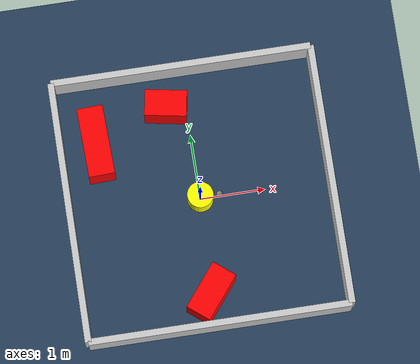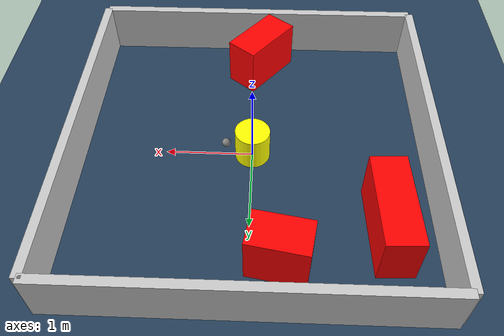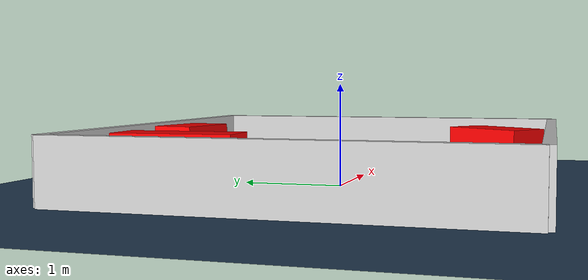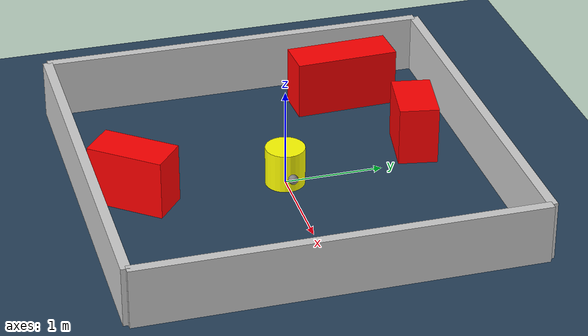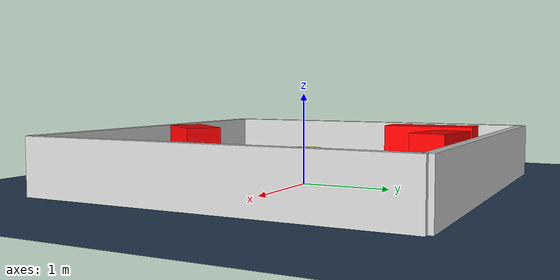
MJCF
<?xml version="1.0" ?>
<mujoco model="generated_environment">
  <option timestep="0.01" integrator="RK4" cone="elliptic"/>
  <default>
    <geom density="1"/>
  </default>
  <asset>
    <texture builtin="gradient" height="3072" rgb1="0.3 0.5 0.7" rgb2="0 0 0" type="skybox" width="512"/>
    <texture builtin="checker" height="300" mark="edge" markrgb="0.8 0.8 0.8" name="groundplane" rgb1="0.2 0.3 0.4" rgb2="0.1 0.2 0.3" type="2d" width="300"/>
    <material name="groundplane" reflectance="0.2" texrepeat="5 5" texture="groundplane" texuniform="true"/>
    <material name="robot" rgba="0.0 1.0 0.0 1"/>
  </asset>
  <worldbody>
    <light dir="0 0 -1" directional="true" pos="0 0 1.5"/>
    <geom condim="4" friction="1.0 0.005 0.001" material="groundplane" name="floor" size="0 0 0.05" type="plane"/>
    <body name="walls">
      <geom name="wall_1" condim="4" pos="-2.0 0.0 0.3" rgba="0.800000011920929 0.800000011920929 0.800000011920929 1.0" size="0.05 2.0 0.3" type="box"/>
      <geom name="wall_2" condim="4" pos="2.0 0.0 0.3" rgba="0.800000011920929 0.800000011920929 0.800000011920929 1.0" size="0.05 2.0 0.3" type="box"/>
      <geom name="wall_3" condim="4" pos="0.0 -2.0 0.3" rgba="0.800000011920929 0.800000011920929 0.800000011920929 1.0" size="2.0 0.05 0.3" type="box"/>
      <geom name="wall_4" condim="4" pos="0.0 2.0 0.3" rgba="0.800000011920929 0.800000011920929 0.800000011920929 1.0" size="2.0 0.05 0.3" type="box"/>
    </body>
    <body name="robot">
      <joint name="joint_x" type="slide" pos="0 0 0" axis="1 0 0"/>
      <joint name="joint_y" type="slide" pos="0 0 0" axis="0 1 0"/>
      <geom name="robot" type="sphere" pos="0.3 0.0 0.2" size="0.05" mass="5." friction="1.0 0.005 0.0001" condim="4" rgba="0.5 0.5 0.5 1.0"/>
      <site name="sensor_ball"/>
    </body>
    <body name="obstacle_movable_1">
      <geom name="obstacle_movable_1" condim="4" pos="0.0 0.0 0.2" euler="0 0 0.0" friction="1.0 0.005 0.001" rgba="1.0 1.0 0.0 1.0" size="0.2 0.2 0.0" type="cylinder" mass="0.1"/>
      <joint type="free"/>
    </body>
    <body name="obstacle_2_static">
      <geom name="obstacle_2_static" condim="4" pos="-0.313617933802933 1.44516903101332 0.3" euler="0 0 349.952061185603" friction="1.0 0.005 0.001" rgba="1 0 0 1" size="0.31998961171307 0.2 0.3" type="box"/>
    </body>
    <body name="obstacle_3_static">
      <geom name="obstacle_3_static" condim="4" pos="-0.061734662906132165 -1.5080783813788803 0.3" euler="0 0 51.32147685136184" friction="1.0 0.005 0.001" rgba="1 0 0 1" size="0.3945957999251721 0.2 0.3" type="box"/>
    </body>
    <body name="obstacle_4_static">
      <geom name="obstacle_4_static" condim="4" pos="-1.4486550060364658 1.0191065122949736 0.3" euler="0 0 92.1942143130889" friction="1.0 0.005 0.001" rgba="1 0 0 1" size="0.5328998664076531 0.2 0.3" type="box"/>
    </body>
  </worldbody>
  <actuator>
    <motor name="actuator_x" joint="joint_x" gear="1" ctrlrange="-1 1"/>
    <motor name="actuator_y" joint="joint_y" gear="1" ctrlrange="-1 1"/>
  </actuator>
</mujoco>
